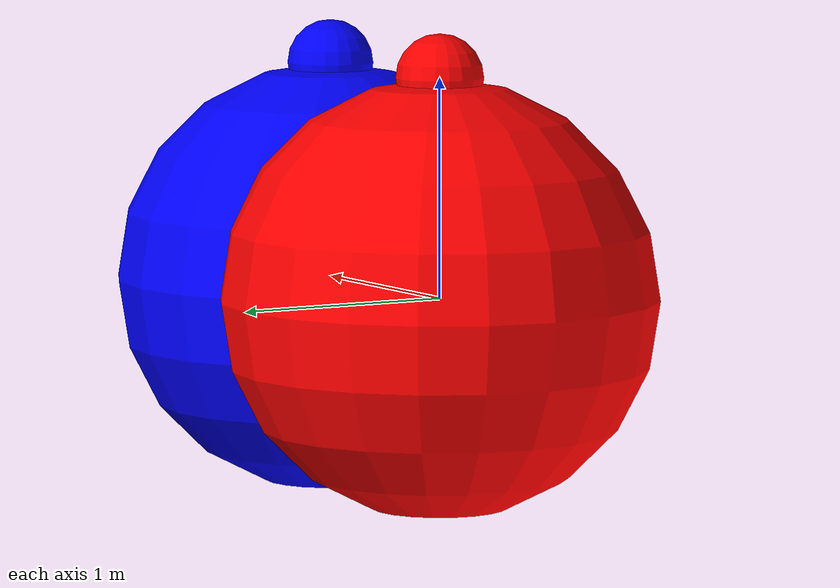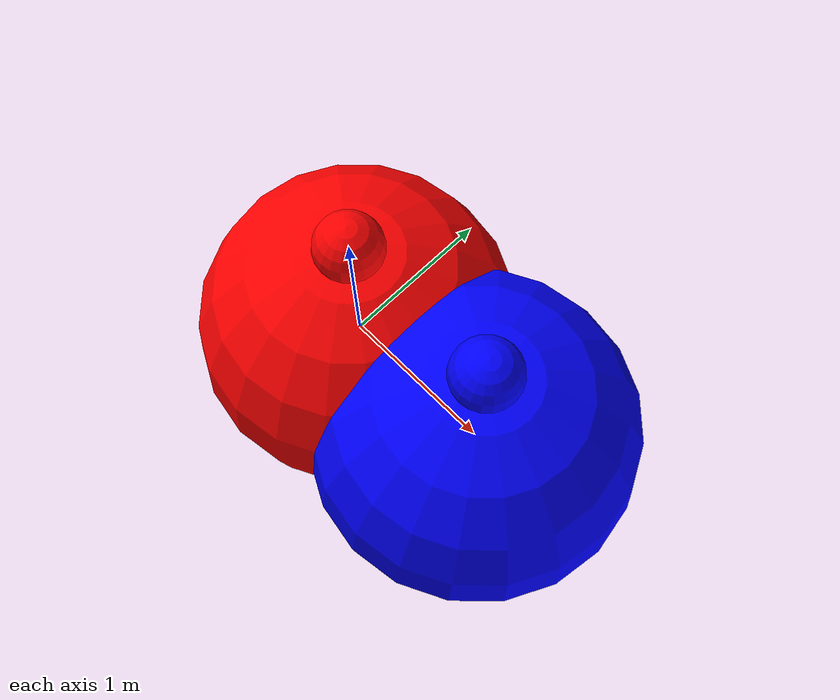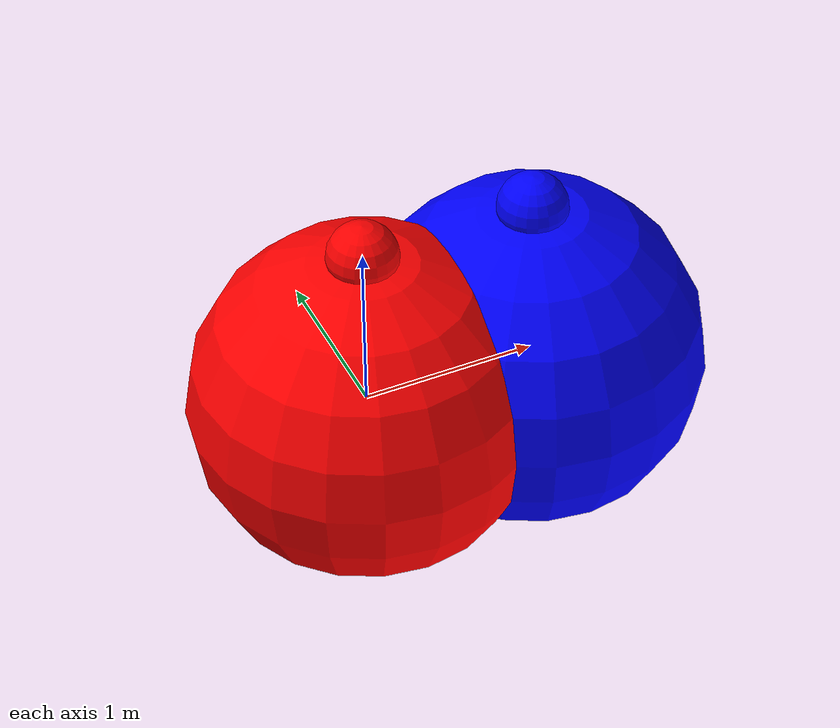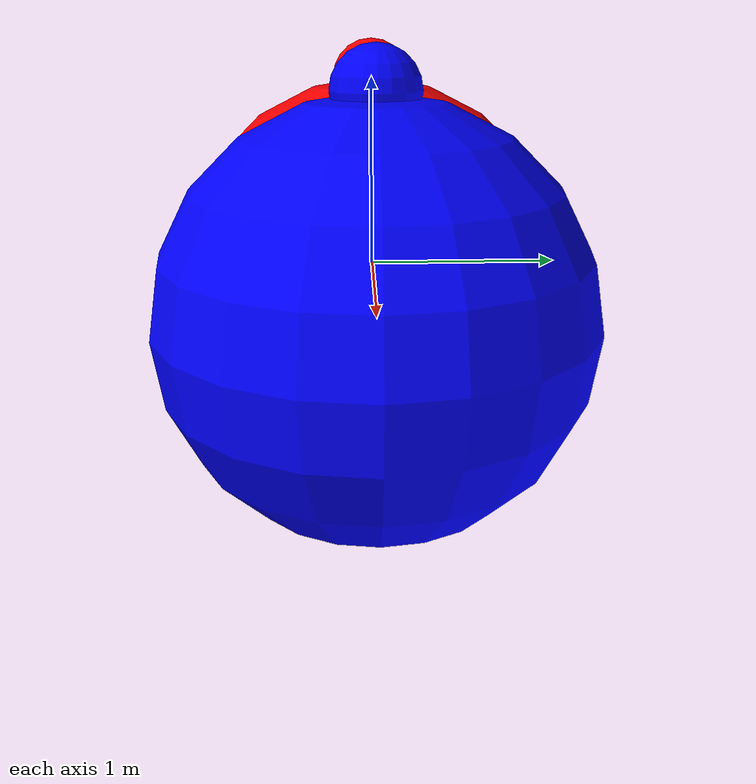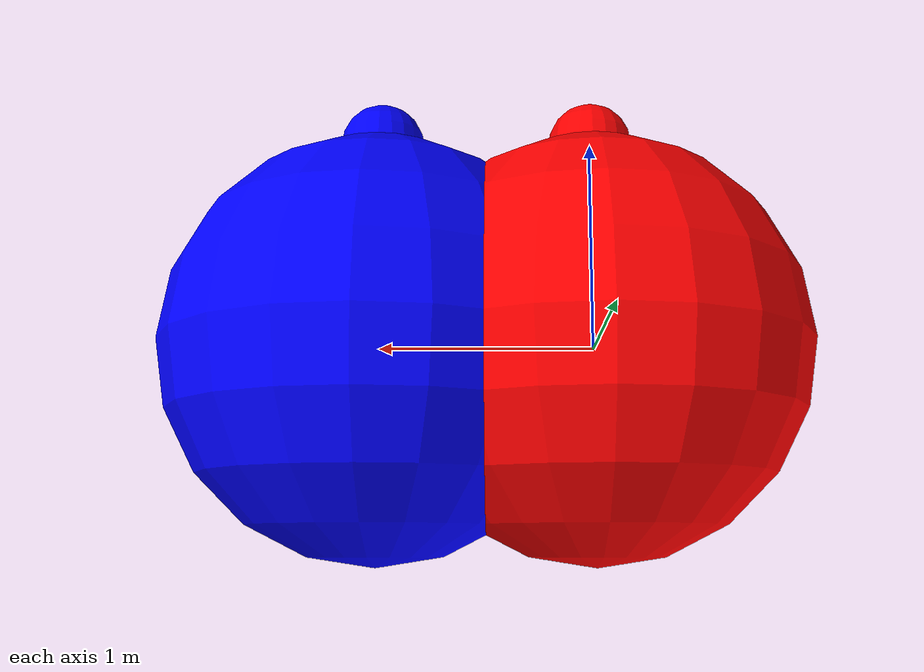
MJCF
<mujoco model="collision_detection_torque_test">
    <option timestep="0.005" gravity="0 0 -9.81" />
    <worldbody>

        <body name="object_1" pos="0 0 1">
            <geom type="sphere" size="0.2" density="1.0" rgba="1 0 0 1" />
            <joint name="object_1_joint" type="free" />
        </body>

        <body name="object_2" pos="1 0 1">
            <geom type="sphere" size="0.2" density="1.0" rgba="0 0 1 1" />
            <joint name="object_2_joint" type="free" />
        </body>
    <body name="sphere" pos="0 0 0"><geom type="sphere" size="1.0" rgba="1 0 0 1" /></body><body name="sphere" pos="1 0 0"><geom type="sphere" size="1.0" rgba="0 0 1 1" /></body></worldbody>
</mujoco>
